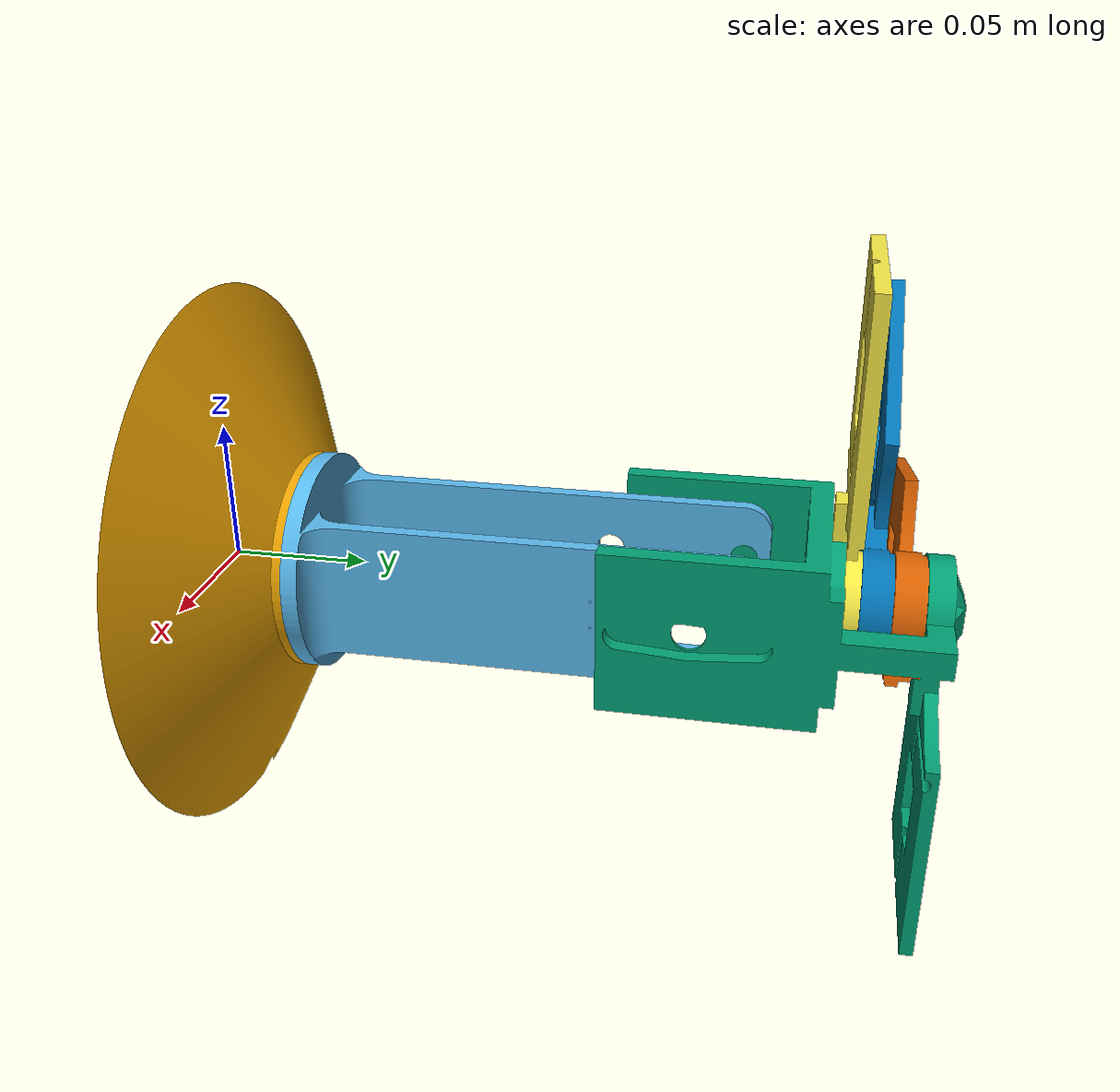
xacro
<?xml version="1.0"?>
<robot name="solar_flower" xmlns:xacro="http://www.ros.org/wiki/xacro">
  <!-- Mesh scale: Fusion STL exported in mm, ROS uses meters -->
  <xacro:property name="mesh_scale" value="0.001 0.001 0.001"/>

  <!-- Base link -->
  <link name="base_link">
   <visual>
    <origin xyz="0 0 0" rpy="0 0 0"/>
    <geometry>
      <mesh filename="package://solar_flower_description/meshes/base_link.stl" scale="0.001 0.001 0.001"/>
    </geometry>
   </visual>
 </link>
  <!-- Azimuth link -->
  <link name="azimuth_link">
    <visual>
      <geometry>
        <mesh filename="package://solar_flower_description/meshes/azimuth_link.stl" scale="${mesh_scale}"/>
      </geometry>
    </visual>
  </link>

  <!-- Tilt link -->
  <link name="tilt_link">
   <visual>
    <origin xyz="-0.0325 -0.17535 0" rpy="0 0 0"/>
    <geometry>
      <mesh filename="package://solar_flower_description/meshes/tilt_link.stl" scale="0.001 0.001 0.001"/>
    </geometry>
  </visual>
 </link>
  <!-- Red petal -->
  <link name="red_petal_link">
    <visual>
      <origin xyz="-0.0325 -0.17535 0" rpy="0 0 0"/>
      <geometry>
        <mesh filename="package://solar_flower_description/meshes/red_petal_link.stl" scale="${mesh_scale}"/>
      </geometry>
    </visual>
  </link>

  <!-- Blue petal -->
  <link name="blue_petal_link">
    <visual>
      <origin xyz="-0.0325 -0.17535 0" rpy="0 0 0"/>
      <geometry>
        <mesh filename="package://solar_flower_description/meshes/blue_petal_link.stl" scale="${mesh_scale}"/>
      </geometry>
    </visual>
  </link>

  <!-- Green petal -->
  <link name="green_petal_link">
    <visual>
      <origin xyz="-0.0325 -0.17535 0" rpy="0 0 0"/>
      <geometry>
        <mesh filename="package://solar_flower_description/meshes/green_petal_link.stl" scale="${mesh_scale}"/>
      </geometry>
    </visual>
  </link>

  <!-- Temporary fixed joints only for mesh alignment check -->
  <joint name="azimuth_joint" type="revolute">
   <parent link="base_link"/>
   <child link="azimuth_link"/>
   <origin xyz="0 0 0" rpy="0 0 0"/>
   <axis xyz="0 1 0"/>
   <limit lower="-2.8" upper="2.8" effort="10" velocity="1.0"/>
 </joint>

 <joint name="tilt_joint" type="revolute">
  <parent link="azimuth_link"/>
  <child link="tilt_link"/>
  <origin xyz="0.0325 0.17535 0" rpy="0 0 0"/>
  <axis xyz="1 0 0"/>
  <limit lower="-0.524" upper="0.524" effort="10" velocity="1.0"/>
</joint>

 <joint name="red_petal_joint" type="revolute">
  <parent link="tilt_link"/>
  <child link="red_petal_link"/>
  <origin xyz="0 0 0" rpy="0 0 0"/>
  <axis xyz="0 1 0"/>
  <limit lower="-3.142" upper="0" effort="5" velocity="1.0"/>
 </joint>

 <joint name="blue_petal_joint" type="revolute">
  <parent link="tilt_link"/>
  <child link="blue_petal_link"/>
  <origin xyz="0 0 0" rpy="0 0 0"/>
  <axis xyz="0 1 0"/>
  <limit lower="-2.094" upper="0" effort="5" velocity="1.0"/>
 </joint>

 <joint name="green_petal_joint" type="revolute">
  <parent link="tilt_link"/>
  <child link="green_petal_link"/>
  <origin xyz="0 0 0" rpy="0 0 0"/>
  <axis xyz="0 1 0"/>
  <limit lower="-1.309" upper="0" effort="5" velocity="1.0"/>
 </joint>
</robot>
